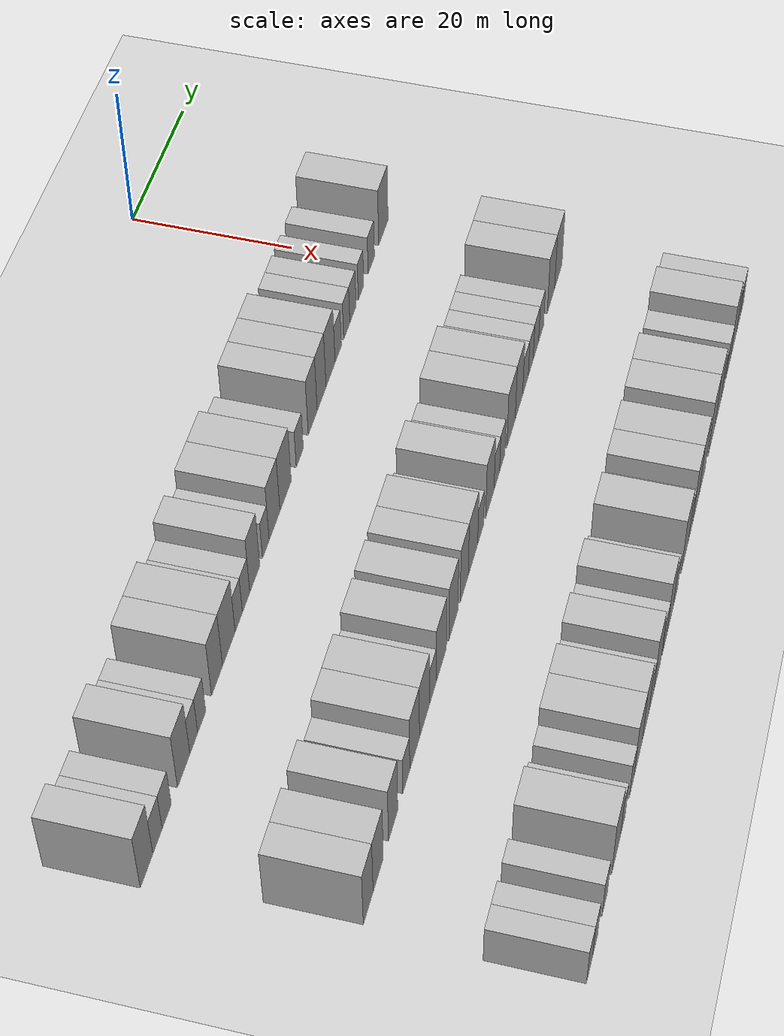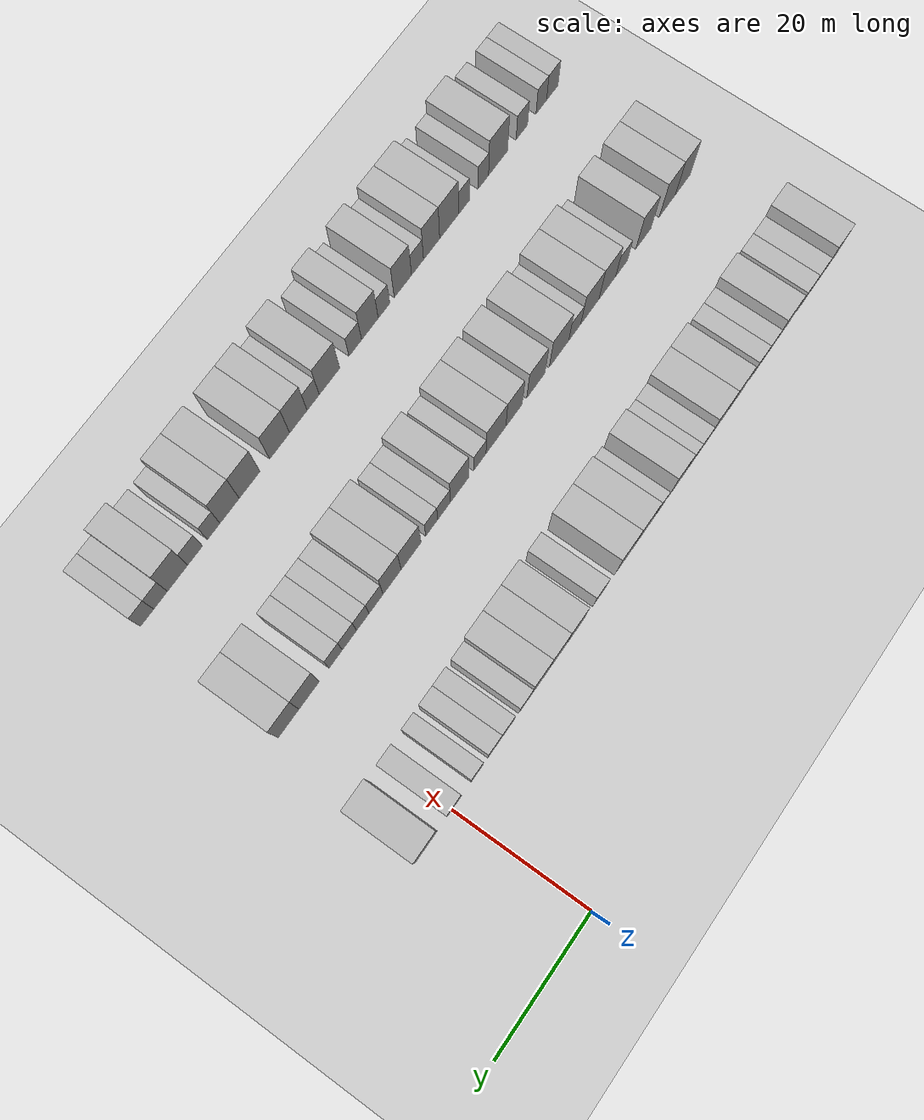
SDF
<sdf version="1.6">
 <world name="default">
  <include><name>ground_plane_1</name><uri>model://HANNAS_ground_plane</uri></include>
  <model name="building_67">
   <static>1</static>
   <pose>25.0000 -85.4441 0 0.000000 0.000000 0.000000</pose>
   <link name="link">
    <pose>0 0 4.50 0 0 0</pose>
    <collision name="collision"><geometry><box><size>10.0000 3.8924 9.0000</size></box></geometry></collision>
    <visual name="visual">
     <cast_shadows>0</cast_shadows>
     <geometry><box><size>10.0000 3.8924 9.0000</size></box></geometry>
     <material>
      <script>
       <uri>model://HANNAS_wall/materials/scripts</uri>
       <uri>model://HANNAS_wall/materials/textures</uri>
       <name>vrc/HANNAS_wall</name>
      </script>
     </material>
    </visual>
   </link>
  </model>
  <model name="building_68">
   <static>1</static>
   <pose>25.0000 -82.0385 0 0.000000 0.000000 0.000000</pose>
   <link name="link">
    <pose>0 0 3.00 0 0 0</pose>
    <collision name="collision"><geometry><box><size>10.0000 2.9190 6.0000</size></box></geometry></collision>
    <visual name="visual">
     <cast_shadows>0</cast_shadows>
     <geometry><box><size>10.0000 2.9190 6.0000</size></box></geometry>
     <material>
      <script>
       <uri>model://HANNAS_wall/materials/scripts</uri>
       <uri>model://HANNAS_wall/materials/textures</uri>
       <name>vrc/HANNAS_wall</name>
      </script>
     </material>
    </visual>
   </link>
  </model>
  <model name="building_69">
   <static>1</static>
   <pose>25.0000 -79.1159 0 0.000000 0.000000 0.000000</pose>
   <link name="link">
    <pose>0 0 3.00 0 0 0</pose>
    <collision name="collision"><geometry><box><size>10.0000 2.9261 6.0000</size></box></geometry></collision>
    <visual name="visual">
     <cast_shadows>0</cast_shadows>
     <geometry><box><size>10.0000 2.9261 6.0000</size></box></geometry>
     <material>
      <script>
       <uri>model://HANNAS_wall/materials/scripts</uri>
       <uri>model://HANNAS_wall/materials/textures</uri>
       <name>vrc/HANNAS_wall</name>
      </script>
     </material>
    </visual>
   </link>
  </model>
  <model name="building_70">
   <static>1</static>
   <pose>25.0000 -73.6167 0 0.000000 0.000000 0.000000</pose>
   <link name="link">
    <pose>0 0 4.50 0 0 0</pose>
    <collision name="collision"><geometry><box><size>10.0000 4.0724 9.0000</size></box></geometry></collision>
    <visual name="visual">
     <cast_shadows>0</cast_shadows>
     <geometry><box><size>10.0000 4.0724 9.0000</size></box></geometry>
     <material>
      <script>
       <uri>model://HANNAS_wall/materials/scripts</uri>
       <uri>model://HANNAS_wall/materials/textures</uri>
       <name>vrc/HANNAS_wall</name>
      </script>
     </material>
    </visual>
   </link>
  </model>
  <model name="building_71">
   <static>1</static>
   <pose>25.0000 -70.2737 0 0.000000 0.000000 0.000000</pose>
   <link name="link">
    <pose>0 0 3.00 0 0 0</pose>
    <collision name="collision"><geometry><box><size>10.0000 2.6136 6.0000</size></box></geometry></collision>
    <visual name="visual">
     <cast_shadows>0</cast_shadows>
     <geometry><box><size>10.0000 2.6136 6.0000</size></box></geometry>
     <material>
      <script>
       <uri>model://HANNAS_wall/materials/scripts</uri>
       <uri>model://HANNAS_wall/materials/textures</uri>
       <name>vrc/HANNAS_wall</name>
      </script>
     </material>
    </visual>
   </link>
  </model>
  <model name="building_72">
   <static>1</static>
   <pose>25.0000 -67.6079 0 0.000000 0.000000 0.000000</pose>
   <link name="link">
    <pose>0 0 3.00 0 0 0</pose>
    <collision name="collision"><geometry><box><size>10.0000 2.7178 6.0000</size></box></geometry></collision>
    <visual name="visual">
     <cast_shadows>0</cast_shadows>
     <geometry><box><size>10.0000 2.7178 6.0000</size></box></geometry>
     <material>
      <script>
       <uri>model://HANNAS_wall/materials/scripts</uri>
       <uri>model://HANNAS_wall/materials/textures</uri>
       <name>vrc/HANNAS_wall</name>
      </script>
     </material>
    </visual>
   </link>
  </model>
  <model name="building_73">
   <static>1</static>
   <pose>25.0000 -62.3417 0 0.000000 0.000000 0.000000</pose>
   <link name="link">
    <pose>0 0 4.50 0 0 0</pose>
    <collision name="collision"><geometry><box><size>10.0000 3.8146 9.0000</size></box></geometry></collision>
    <visual name="visual">
     <cast_shadows>0</cast_shadows>
     <geometry><box><size>10.0000 3.8146 9.0000</size></box></geometry>
     <material>
      <script>
       <uri>model://HANNAS_wall/materials/scripts</uri>
       <uri>model://HANNAS_wall/materials/textures</uri>
       <name>vrc/HANNAS_wall</name>
      </script>
     </material>
    </visual>
   </link>
  </model>
  <model name="building_74">
   <static>1</static>
   <pose>25.0000 -58.2011 0 0.000000 0.000000 0.000000</pose>
   <link name="link">
    <pose>0 0 4.50 0 0 0</pose>
    <collision name="collision"><geometry><box><size>10.0000 4.4665 9.0000</size></box></geometry></collision>
    <visual name="visual">
     <cast_shadows>0</cast_shadows>
     <geometry><box><size>10.0000 4.4665 9.0000</size></box></geometry>
     <material>
      <script>
       <uri>model://HANNAS_wall/materials/scripts</uri>
       <uri>model://HANNAS_wall/materials/textures</uri>
       <name>vrc/HANNAS_wall</name>
      </script>
     </material>
    </visual>
   </link>
  </model>
  <model name="building_75">
   <static>1</static>
   <pose>25.0000 -54.6587 0 0.000000 0.000000 0.000000</pose>
   <link name="link">
    <pose>0 0 3.00 0 0 0</pose>
    <collision name="collision"><geometry><box><size>10.0000 2.6183 6.0000</size></box></geometry></collision>
    <visual name="visual">
     <cast_shadows>0</cast_shadows>
     <geometry><box><size>10.0000 2.6183 6.0000</size></box></geometry>
     <material>
      <script>
       <uri>model://HANNAS_wall/materials/scripts</uri>
       <uri>model://HANNAS_wall/materials/textures</uri>
       <name>vrc/HANNAS_wall</name>
      </script>
     </material>
    </visual>
   </link>
  </model>
  <model name="building_76">
   <static>1</static>
   <pose>25.0000 -51.9928 0 0.000000 0.000000 0.000000</pose>
   <link name="link">
    <pose>0 0 3.00 0 0 0</pose>
    <collision name="collision"><geometry><box><size>10.0000 2.7135 6.0000</size></box></geometry></collision>
    <visual name="visual">
     <cast_shadows>0</cast_shadows>
     <geometry><box><size>10.0000 2.7135 6.0000</size></box></geometry>
     <material>
      <script>
       <uri>model://HANNAS_wall/materials/scripts</uri>
       <uri>model://HANNAS_wall/materials/textures</uri>
       <name>vrc/HANNAS_wall</name>
      </script>
     </material>
    </visual>
   </link>
  </model>
  <model name="building_77">
   <static>1</static>
   <pose>25.0000 -48.7814 0 0.000000 0.000000 0.000000</pose>
   <link name="link">
    <pose>0 0 4.50 0 0 0</pose>
    <collision name="collision"><geometry><box><size>10.0000 3.7094 9.0000</size></box></geometry></collision>
    <visual name="visual">
     <cast_shadows>0</cast_shadows>
     <geometry><box><size>10.0000 3.7094 9.0000</size></box></geometry>
     <material>
      <script>
       <uri>model://HANNAS_wall/materials/scripts</uri>
       <uri>model://HANNAS_wall/materials/textures</uri>
       <name>vrc/HANNAS_wall</name>
      </script>
     </material>
    </visual>
   </link>
  </model>
  <model name="building_78">
   <static>1</static>
   <pose>25.0000 -44.6507 0 0.000000 0.000000 0.000000</pose>
   <link name="link">
    <pose>0 0 3.00 0 0 0</pose>
    <collision name="collision"><geometry><box><size>10.0000 2.5519 6.0000</size></box></geometry></collision>
    <visual name="visual">
     <cast_shadows>0</cast_shadows>
     <geometry><box><size>10.0000 2.5519 6.0000</size></box></geometry>
     <material>
      <script>
       <uri>model://HANNAS_wall/materials/scripts</uri>
       <uri>model://HANNAS_wall/materials/textures</uri>
       <name>vrc/HANNAS_wall</name>
      </script>
     </material>
    </visual>
   </link>
  </model>
  <model name="building_79">
   <static>1</static>
   <pose>25.0000 -41.3000 0 0.000000 0.000000 0.000000</pose>
   <link name="link">
    <pose>0 0 4.50 0 0 0</pose>
    <collision name="collision"><geometry><box><size>10.0000 4.1495 9.0000</size></box></geometry></collision>
    <visual name="visual">
     <cast_shadows>0</cast_shadows>
     <geometry><box><size>10.0000 4.1495 9.0000</size></box></geometry>
     <material>
      <script>
       <uri>model://HANNAS_wall/materials/scripts</uri>
       <uri>model://HANNAS_wall/materials/textures</uri>
       <name>vrc/HANNAS_wall</name>
      </script>
     </material>
    </visual>
   </link>
  </model>
  <model name="building_80">
   <static>1</static>
   <pose>25.0000 -37.0117 0 0.000000 0.000000 0.000000</pose>
   <link name="link">
    <pose>0 0 4.50 0 0 0</pose>
    <collision name="collision"><geometry><box><size>10.0000 4.4269 9.0000</size></box></geometry></collision>
    <visual name="visual">
     <cast_shadows>0</cast_shadows>
     <geometry><box><size>10.0000 4.4269 9.0000</size></box></geometry>
     <material>
      <script>
       <uri>model://HANNAS_wall/materials/scripts</uri>
       <uri>model://HANNAS_wall/materials/textures</uri>
       <name>vrc/HANNAS_wall</name>
      </script>
     </material>
    </visual>
   </link>
  </model>
  <model name="building_81">
   <static>1</static>
   <pose>25.0000 -31.3711 0 0.000000 0.000000 0.000000</pose>
   <link name="link">
    <pose>0 0 3.00 0 0 0</pose>
    <collision name="collision"><geometry><box><size>10.0000 2.8544 6.0000</size></box></geometry></collision>
    <visual name="visual">
     <cast_shadows>0</cast_shadows>
     <geometry><box><size>10.0000 2.8544 6.0000</size></box></geometry>
     <material>
      <script>
       <uri>model://HANNAS_wall/materials/scripts</uri>
       <uri>model://HANNAS_wall/materials/textures</uri>
       <name>vrc/HANNAS_wall</name>
      </script>
     </material>
    </visual>
   </link>
  </model>
  <model name="building_82">
   <static>1</static>
   <pose>25.0000 -26.0920 0 0.000000 0.000000 0.000000</pose>
   <link name="link">
    <pose>0 0 4.50 0 0 0</pose>
    <collision name="collision"><geometry><box><size>10.0000 3.7039 9.0000</size></box></geometry></collision>
    <visual name="visual">
     <cast_shadows>0</cast_shadows>
     <geometry><box><size>10.0000 3.7039 9.0000</size></box></geometry>
     <material>
      <script>
       <uri>model://HANNAS_wall/materials/scripts</uri>
       <uri>model://HANNAS_wall/materials/textures</uri>
       <name>vrc/HANNAS_wall</name>
      </script>
     </material>
    </visual>
   </link>
  </model>
  <model name="building_83">
   <static>1</static>
   <pose>25.0000 -22.3873 0 0.000000 0.000000 0.000000</pose>
   <link name="link">
    <pose>0 0 4.50 0 0 0</pose>
    <collision name="collision"><geometry><box><size>10.0000 3.7054 9.0000</size></box></geometry></collision>
    <visual name="visual">
     <cast_shadows>0</cast_shadows>
     <geometry><box><size>10.0000 3.7054 9.0000</size></box></geometry>
     <material>
      <script>
       <uri>model://HANNAS_wall/materials/scripts</uri>
       <uri>model://HANNAS_wall/materials/textures</uri>
       <name>vrc/HANNAS_wall</name>
      </script>
     </material>
    </visual>
   </link>
  </model>
  <model name="building_84">
   <static>1</static>
   <pose>25.0000 -18.6073 0 0.000000 0.000000 0.000000</pose>
   <link name="link">
    <pose>0 0 4.50 0 0 0</pose>
    <collision name="collision"><geometry><box><size>10.0000 3.8545 9.0000</size></box></geometry></collision>
    <visual name="visual">
     <cast_shadows>0</cast_shadows>
     <geometry><box><size>10.0000 3.8545 9.0000</size></box></geometry>
     <material>
      <script>
       <uri>model://HANNAS_wall/materials/scripts</uri>
       <uri>model://HANNAS_wall/materials/textures</uri>
       <name>vrc/HANNAS_wall</name>
      </script>
     </material>
    </visual>
   </link>
  </model>
  <model name="building_85">
   <static>1</static>
   <pose>25.0000 -15.3106 0 0.000000 0.000000 0.000000</pose>
   <link name="link">
    <pose>0 0 3.00 0 0 0</pose>
    <collision name="collision"><geometry><box><size>10.0000 2.7390 6.0000</size></box></geometry></collision>
    <visual name="visual">
     <cast_shadows>0</cast_shadows>
     <geometry><box><size>10.0000 2.7390 6.0000</size></box></geometry>
     <material>
      <script>
       <uri>model://HANNAS_wall/materials/scripts</uri>
       <uri>model://HANNAS_wall/materials/textures</uri>
       <name>vrc/HANNAS_wall</name>
      </script>
     </material>
    </visual>
   </link>
  </model>
  <model name="building_86">
   <static>1</static>
   <pose>25.0000 -11.5894 0 0.000000 0.000000 0.000000</pose>
   <link name="link">
    <pose>0 0 3.00 0 0 0</pose>
    <collision name="collision"><geometry><box><size>10.0000 2.7033 6.0000</size></box></geometry></collision>
    <visual name="visual">
     <cast_shadows>0</cast_shadows>
     <geometry><box><size>10.0000 2.7033 6.0000</size></box></geometry>
     <material>
      <script>
       <uri>model://HANNAS_wall/materials/scripts</uri>
       <uri>model://HANNAS_wall/materials/textures</uri>
       <name>vrc/HANNAS_wall</name>
      </script>
     </material>
    </visual>
   </link>
  </model>
  <model name="building_87">
   <static>1</static>
   <pose>25.0000 -8.8435 0 0.000000 0.000000 0.000000</pose>
   <link name="link">
    <pose>0 0 3.00 0 0 0</pose>
    <collision name="collision"><geometry><box><size>10.0000 2.7885 6.0000</size></box></geometry></collision>
    <visual name="visual">
     <cast_shadows>0</cast_shadows>
     <geometry><box><size>10.0000 2.7885 6.0000</size></box></geometry>
     <material>
      <script>
       <uri>model://HANNAS_wall/materials/scripts</uri>
       <uri>model://HANNAS_wall/materials/textures</uri>
       <name>vrc/HANNAS_wall</name>
      </script>
     </material>
    </visual>
   </link>
  </model>
  <model name="building_88">
   <static>1</static>
   <pose>25.0000 -5.2146 0 0.000000 0.000000 0.000000</pose>
   <link name="link">
    <pose>0 0 3.00 0 0 0</pose>
    <collision name="collision"><geometry><box><size>10.0000 2.4694 6.0000</size></box></geometry></collision>
    <visual name="visual">
     <cast_shadows>0</cast_shadows>
     <geometry><box><size>10.0000 2.4694 6.0000</size></box></geometry>
     <material>
      <script>
       <uri>model://HANNAS_wall/materials/scripts</uri>
       <uri>model://HANNAS_wall/materials/textures</uri>
       <name>vrc/HANNAS_wall</name>
      </script>
     </material>
    </visual>
   </link>
  </model>
  <model name="building_89">
   <static>1</static>
   <pose>25.0000 -0.5125 0 0.000000 0.000000 0.000000</pose>
   <link name="link">
    <pose>0 0 3.00 0 0 0</pose>
    <collision name="collision"><geometry><box><size>10.0000 2.9347 6.0000</size></box></geometry></collision>
    <visual name="visual">
     <cast_shadows>0</cast_shadows>
     <geometry><box><size>10.0000 2.9347 6.0000</size></box></geometry>
     <material>
      <script>
       <uri>model://HANNAS_wall/materials/scripts</uri>
       <uri>model://HANNAS_wall/materials/textures</uri>
       <name>vrc/HANNAS_wall</name>
      </script>
     </material>
    </visual>
   </link>
  </model>
  <model name="building_90">
   <static>1</static>
   <pose>25.0000 5.1583 0 0.000000 0.000000 0.000000</pose>
   <link name="link">
    <pose>0 0 4.50 0 0 0</pose>
    <collision name="collision"><geometry><box><size>10.0000 4.4070 9.0000</size></box></geometry></collision>
    <visual name="visual">
     <cast_shadows>0</cast_shadows>
     <geometry><box><size>10.0000 4.4070 9.0000</size></box></geometry>
     <material>
      <script>
       <uri>model://HANNAS_wall/materials/scripts</uri>
       <uri>model://HANNAS_wall/materials/textures</uri>
       <name>vrc/HANNAS_wall</name>
      </script>
     </material>
    </visual>
   </link>
  </model>
  <model name="building_256">
   <static>1</static>
   <pose>47.0000 -84.1602 0 0.000000 0.000000 0.000000</pose>
   <link name="link">
    <pose>0 0 4.50 0 0 0</pose>
    <collision name="collision"><geometry><box><size>10.0000 3.6642 9.0000</size></box></geometry></collision>
    <visual name="visual">
     <cast_shadows>0</cast_shadows>
     <geometry><box><size>10.0000 3.6642 9.0000</size></box></geometry>
     <material>
      <script>
       <uri>model://HANNAS_wall/materials/scripts</uri>
       <uri>model://HANNAS_wall/materials/textures</uri>
       <name>vrc/HANNAS_wall</name>
      </script>
     </material>
    </visual>
   </link>
  </model>
  <model name="building_257">
   <static>1</static>
   <pose>47.0000 -80.3990 0 0.000000 0.000000 0.000000</pose>
   <link name="link">
    <pose>0 0 4.50 0 0 0</pose>
    <collision name="collision"><geometry><box><size>10.0000 3.8583 9.0000</size></box></geometry></collision>
    <visual name="visual">
     <cast_shadows>0</cast_shadows>
     <geometry><box><size>10.0000 3.8583 9.0000</size></box></geometry>
     <material>
      <script>
       <uri>model://HANNAS_wall/materials/scripts</uri>
       <uri>model://HANNAS_wall/materials/textures</uri>
       <name>vrc/HANNAS_wall</name>
      </script>
     </material>
    </visual>
   </link>
  </model>
  <model name="building_258">
   <static>1</static>
   <pose>47.0000 -74.6561 0 0.000000 0.000000 0.000000</pose>
   <link name="link">
    <pose>0 0 4.50 0 0 0</pose>
    <collision name="collision"><geometry><box><size>10.0000 3.6276 9.0000</size></box></geometry></collision>
    <visual name="visual">
     <cast_shadows>0</cast_shadows>
     <geometry><box><size>10.0000 3.6276 9.0000</size></box></geometry>
     <material>
      <script>
       <uri>model://HANNAS_wall/materials/scripts</uri>
       <uri>model://HANNAS_wall/materials/textures</uri>
       <name>vrc/HANNAS_wall</name>
      </script>
     </material>
    </visual>
   </link>
  </model>
  <model name="building_259">
   <static>1</static>
   <pose>47.0000 -69.4390 0 0.000000 0.000000 0.000000</pose>
   <link name="link">
    <pose>0 0 3.00 0 0 0</pose>
    <collision name="collision"><geometry><box><size>10.0000 2.8066 6.0000</size></box></geometry></collision>
    <visual name="visual">
     <cast_shadows>0</cast_shadows>
     <geometry><box><size>10.0000 2.8066 6.0000</size></box></geometry>
     <material>
      <script>
       <uri>model://HANNAS_wall/materials/scripts</uri>
       <uri>model://HANNAS_wall/materials/textures</uri>
       <name>vrc/HANNAS_wall</name>
      </script>
     </material>
    </visual>
   </link>
  </model>
  <model name="building_260">
   <static>1</static>
   <pose>47.0000 -66.0527 0 0.000000 0.000000 0.000000</pose>
   <link name="link">
    <pose>0 0 4.50 0 0 0</pose>
    <collision name="collision"><geometry><box><size>10.0000 3.9659 9.0000</size></box></geometry></collision>
    <visual name="visual">
     <cast_shadows>0</cast_shadows>
     <geometry><box><size>10.0000 3.9659 9.0000</size></box></geometry>
     <material>
      <script>
       <uri>model://HANNAS_wall/materials/scripts</uri>
       <uri>model://HANNAS_wall/materials/textures</uri>
       <name>vrc/HANNAS_wall</name>
      </script>
     </material>
    </visual>
   </link>
  </model>
  <model name="building_261">
   <static>1</static>
   <pose>47.0000 -61.9596 0 0.000000 0.000000 0.000000</pose>
   <link name="link">
    <pose>0 0 4.50 0 0 0</pose>
    <collision name="collision"><geometry><box><size>10.0000 4.2204 9.0000</size></box></geometry></collision>
    <visual name="visual">
     <cast_shadows>0</cast_shadows>
     <geometry><box><size>10.0000 4.2204 9.0000</size></box></geometry>
     <material>
      <script>
       <uri>model://HANNAS_wall/materials/scripts</uri>
       <uri>model://HANNAS_wall/materials/textures</uri>
       <name>vrc/HANNAS_wall</name>
      </script>
     </material>
    </visual>
   </link>
  </model>
  <model name="building_262">
   <static>1</static>
   <pose>47.0000 -58.4572 0 0.000000 0.000000 0.000000</pose>
   <link name="link">
    <pose>0 0 3.00 0 0 0</pose>
    <collision name="collision"><geometry><box><size>10.0000 2.7843 6.0000</size></box></geometry></collision>
    <visual name="visual">
     <cast_shadows>0</cast_shadows>
     <geometry><box><size>10.0000 2.7843 6.0000</size></box></geometry>
     <material>
      <script>
       <uri>model://HANNAS_wall/materials/scripts</uri>
       <uri>model://HANNAS_wall/materials/textures</uri>
       <name>vrc/HANNAS_wall</name>
      </script>
     </material>
    </visual>
   </link>
  </model>
  <model name="building_263">
   <static>1</static>
   <pose>47.0000 -54.8286 0 0.000000 0.000000 0.000000</pose>
   <link name="link">
    <pose>0 0 4.50 0 0 0</pose>
    <collision name="collision"><geometry><box><size>10.0000 4.4730 9.0000</size></box></geometry></collision>
    <visual name="visual">
     <cast_shadows>0</cast_shadows>
     <geometry><box><size>10.0000 4.4730 9.0000</size></box></geometry>
     <material>
      <script>
       <uri>model://HANNAS_wall/materials/scripts</uri>
       <uri>model://HANNAS_wall/materials/textures</uri>
       <name>vrc/HANNAS_wall</name>
      </script>
     </material>
    </visual>
   </link>
  </model>
  <model name="building_264">
   <static>1</static>
   <pose>47.0000 -49.5377 0 0.000000 0.000000 0.000000</pose>
   <link name="link">
    <pose>0 0 4.50 0 0 0</pose>
    <collision name="collision"><geometry><box><size>10.0000 4.1087 9.0000</size></box></geometry></collision>
    <visual name="visual">
     <cast_shadows>0</cast_shadows>
     <geometry><box><size>10.0000 4.1087 9.0000</size></box></geometry>
     <material>
      <script>
       <uri>model://HANNAS_wall/materials/scripts</uri>
       <uri>model://HANNAS_wall/materials/textures</uri>
       <name>vrc/HANNAS_wall</name>
      </script>
     </material>
    </visual>
   </link>
  </model>
  <model name="building_265">
   <static>1</static>
   <pose>47.0000 -44.6513 0 0.000000 0.000000 0.000000</pose>
   <link name="link">
    <pose>0 0 4.50 0 0 0</pose>
    <collision name="collision"><geometry><box><size>10.0000 3.6641 9.0000</size></box></geometry></collision>
    <visual name="visual">
     <cast_shadows>0</cast_shadows>
     <geometry><box><size>10.0000 3.6641 9.0000</size></box></geometry>
     <material>
      <script>
       <uri>model://HANNAS_wall/materials/scripts</uri>
       <uri>model://HANNAS_wall/materials/textures</uri>
       <name>vrc/HANNAS_wall</name>
      </script>
     </material>
    </visual>
   </link>
  </model>
  <model name="building_266">
   <static>1</static>
   <pose>47.0000 -40.6198 0 0.000000 0.000000 0.000000</pose>
   <link name="link">
    <pose>0 0 4.50 0 0 0</pose>
    <collision name="collision"><geometry><box><size>10.0000 4.3990 9.0000</size></box></geometry></collision>
    <visual name="visual">
     <cast_shadows>0</cast_shadows>
     <geometry><box><size>10.0000 4.3990 9.0000</size></box></geometry>
     <material>
      <script>
       <uri>model://HANNAS_wall/materials/scripts</uri>
       <uri>model://HANNAS_wall/materials/textures</uri>
       <name>vrc/HANNAS_wall</name>
      </script>
     </material>
    </visual>
   </link>
  </model>
  <model name="building_267">
   <static>1</static>
   <pose>47.0000 -37.0501 0 0.000000 0.000000 0.000000</pose>
   <link name="link">
    <pose>0 0 3.00 0 0 0</pose>
    <collision name="collision"><geometry><box><size>10.0000 2.7404 6.0000</size></box></geometry></collision>
    <visual name="visual">
     <cast_shadows>0</cast_shadows>
     <geometry><box><size>10.0000 2.7404 6.0000</size></box></geometry>
     <material>
      <script>
       <uri>model://HANNAS_wall/materials/scripts</uri>
       <uri>model://HANNAS_wall/materials/textures</uri>
       <name>vrc/HANNAS_wall</name>
      </script>
     </material>
    </visual>
   </link>
  </model>
  <model name="building_268">
   <static>1</static>
   <pose>47.0000 -32.6610 0 0.000000 0.000000 0.000000</pose>
   <link name="link">
    <pose>0 0 4.50 0 0 0</pose>
    <collision name="collision"><geometry><box><size>10.0000 4.0379 9.0000</size></box></geometry></collision>
    <visual name="visual">
     <cast_shadows>0</cast_shadows>
     <geometry><box><size>10.0000 4.0379 9.0000</size></box></geometry>
     <material>
      <script>
       <uri>model://HANNAS_wall/materials/scripts</uri>
       <uri>model://HANNAS_wall/materials/textures</uri>
       <name>vrc/HANNAS_wall</name>
      </script>
     </material>
    </visual>
   </link>
  </model>
  <model name="building_269">
   <static>1</static>
   <pose>47.0000 -29.2782 0 0.000000 0.000000 0.000000</pose>
   <link name="link">
    <pose>0 0 3.00 0 0 0</pose>
    <collision name="collision"><geometry><box><size>10.0000 2.7278 6.0000</size></box></geometry></collision>
    <visual name="visual">
     <cast_shadows>0</cast_shadows>
     <geometry><box><size>10.0000 2.7278 6.0000</size></box></geometry>
     <material>
      <script>
       <uri>model://HANNAS_wall/materials/scripts</uri>
       <uri>model://HANNAS_wall/materials/textures</uri>
       <name>vrc/HANNAS_wall</name>
      </script>
     </material>
    </visual>
   </link>
  </model>
  <model name="building_270">
   <static>1</static>
   <pose>47.0000 -26.6203 0 0.000000 0.000000 0.000000</pose>
   <link name="link">
    <pose>0 0 3.00 0 0 0</pose>
    <collision name="collision"><geometry><box><size>10.0000 2.5879 6.0000</size></box></geometry></collision>
    <visual name="visual">
     <cast_shadows>0</cast_shadows>
     <geometry><box><size>10.0000 2.5879 6.0000</size></box></geometry>
     <material>
      <script>
       <uri>model://HANNAS_wall/materials/scripts</uri>
       <uri>model://HANNAS_wall/materials/textures</uri>
       <name>vrc/HANNAS_wall</name>
      </script>
     </material>
    </visual>
   </link>
  </model>
  <model name="building_271">
   <static>1</static>
   <pose>47.0000 -22.2176 0 0.000000 0.000000 0.000000</pose>
   <link name="link">
    <pose>0 0 4.50 0 0 0</pose>
    <collision name="collision"><geometry><box><size>10.0000 4.2176 9.0000</size></box></geometry></collision>
    <visual name="visual">
     <cast_shadows>0</cast_shadows>
     <geometry><box><size>10.0000 4.2176 9.0000</size></box></geometry>
     <material>
      <script>
       <uri>model://HANNAS_wall/materials/scripts</uri>
       <uri>model://HANNAS_wall/materials/textures</uri>
       <name>vrc/HANNAS_wall</name>
      </script>
     </material>
    </visual>
   </link>
  </model>
  <model name="building_272">
   <static>1</static>
   <pose>47.0000 -18.2059 0 0.000000 0.000000 0.000000</pose>
   <link name="link">
    <pose>0 0 4.50 0 0 0</pose>
    <collision name="collision"><geometry><box><size>10.0000 3.8058 9.0000</size></box></geometry></collision>
    <visual name="visual">
     <cast_shadows>0</cast_shadows>
     <geometry><box><size>10.0000 3.8058 9.0000</size></box></geometry>
     <material>
      <script>
       <uri>model://HANNAS_wall/materials/scripts</uri>
       <uri>model://HANNAS_wall/materials/textures</uri>
       <name>vrc/HANNAS_wall</name>
      </script>
     </material>
    </visual>
   </link>
  </model>
  <model name="building_273">
   <static>1</static>
   <pose>47.0000 -14.8218 0 0.000000 0.000000 0.000000</pose>
   <link name="link">
    <pose>0 0 3.00 0 0 0</pose>
    <collision name="collision"><geometry><box><size>10.0000 2.9624 6.0000</size></box></geometry></collision>
    <visual name="visual">
     <cast_shadows>0</cast_shadows>
     <geometry><box><size>10.0000 2.9624 6.0000</size></box></geometry>
     <material>
      <script>
       <uri>model://HANNAS_wall/materials/scripts</uri>
       <uri>model://HANNAS_wall/materials/textures</uri>
       <name>vrc/HANNAS_wall</name>
      </script>
     </material>
    </visual>
   </link>
  </model>
  <model name="building_274">
   <static>1</static>
   <pose>47.0000 -12.0505 0 0.000000 0.000000 0.000000</pose>
   <link name="link">
    <pose>0 0 3.00 0 0 0</pose>
    <collision name="collision"><geometry><box><size>10.0000 2.5802 6.0000</size></box></geometry></collision>
    <visual name="visual">
     <cast_shadows>0</cast_shadows>
     <geometry><box><size>10.0000 2.5802 6.0000</size></box></geometry>
     <material>
      <script>
       <uri>model://HANNAS_wall/materials/scripts</uri>
       <uri>model://HANNAS_wall/materials/textures</uri>
       <name>vrc/HANNAS_wall</name>
      </script>
     </material>
    </visual>
   </link>
  </model>
  <model name="building_275">
   <static>1</static>
   <pose>47.0000 -9.3003 0 0.000000 0.000000 0.000000</pose>
   <link name="link">
    <pose>0 0 3.00 0 0 0</pose>
    <collision name="collision"><geometry><box><size>10.0000 2.9200 6.0000</size></box></geometry></collision>
    <visual name="visual">
     <cast_shadows>0</cast_shadows>
     <geometry><box><size>10.0000 2.9200 6.0000</size></box></geometry>
     <material>
      <script>
       <uri>model://HANNAS_wall/materials/scripts</uri>
       <uri>model://HANNAS_wall/materials/textures</uri>
       <name>vrc/HANNAS_wall</name>
      </script>
     </material>
    </visual>
   </link>
  </model>
  <model name="building_276">
   <static>1</static>
   <pose>47.0000 -6.4808 0 0.000000 0.000000 0.000000</pose>
   <link name="link">
    <pose>0 0 3.00 0 0 0</pose>
    <collision name="collision"><geometry><box><size>10.0000 2.7191 6.0000</size></box></geometry></collision>
    <visual name="visual">
     <cast_shadows>0</cast_shadows>
     <geometry><box><size>10.0000 2.7191 6.0000</size></box></geometry>
     <material>
      <script>
       <uri>model://HANNAS_wall/materials/scripts</uri>
       <uri>model://HANNAS_wall/materials/textures</uri>
       <name>vrc/HANNAS_wall</name>
      </script>
     </material>
    </visual>
   </link>
  </model>
  <model name="building_277">
   <static>1</static>
   <pose>47.0000 -1.0818 0 0.000000 0.000000 0.000000</pose>
   <link name="link">
    <pose>0 0 4.50 0 0 0</pose>
    <collision name="collision"><geometry><box><size>10.0000 4.0788 9.0000</size></box></geometry></collision>
    <visual name="visual">
     <cast_shadows>0</cast_shadows>
     <geometry><box><size>10.0000 4.0788 9.0000</size></box></geometry>
     <material>
      <script>
       <uri>model://HANNAS_wall/materials/scripts</uri>
       <uri>model://HANNAS_wall/materials/textures</uri>
       <name>vrc/HANNAS_wall</name>
      </script>
     </material>
    </visual>
   </link>
  </model>
  <model name="building_278">
   <static>1</static>
   <pose>47.0000 3.0430 0 0.000000 0.000000 0.000000</pose>
   <link name="link">
    <pose>0 0 4.50 0 0 0</pose>
    <collision name="collision"><geometry><box><size>10.0000 4.1708 9.0000</size></box></geometry></collision>
    <visual name="visual">
     <cast_shadows>0</cast_shadows>
     <geometry><box><size>10.0000 4.1708 9.0000</size></box></geometry>
     <material>
      <script>
       <uri>model://HANNAS_wall/materials/scripts</uri>
       <uri>model://HANNAS_wall/materials/textures</uri>
       <name>vrc/HANNAS_wall</name>
      </script>
     </material>
    </visual>
   </link>
  </model>
  <model name="building_445">
   <static>1</static>
   <pose>69.0000 -85.5089 0 0.000000 0.000000 0.000000</pose>
   <link name="link">
    <pose>0 0 3.00 0 0 0</pose>
    <collision name="collision"><geometry><box><size>10.0000 2.7718 6.0000</size></box></geometry></collision>
    <visual name="visual">
     <cast_shadows>0</cast_shadows>
     <geometry><box><size>10.0000 2.7718 6.0000</size></box></geometry>
     <material>
      <script>
       <uri>model://HANNAS_wall/materials/scripts</uri>
       <uri>model://HANNAS_wall/materials/textures</uri>
       <name>vrc/HANNAS_wall</name>
      </script>
     </material>
    </visual>
   </link>
  </model>
  <model name="building_446">
   <static>1</static>
   <pose>69.0000 -82.8585 0 0.000000 0.000000 0.000000</pose>
   <link name="link">
    <pose>0 0 3.00 0 0 0</pose>
    <collision name="collision"><geometry><box><size>10.0000 2.5290 6.0000</size></box></geometry></collision>
    <visual name="visual">
     <cast_shadows>0</cast_shadows>
     <geometry><box><size>10.0000 2.5290 6.0000</size></box></geometry>
     <material>
      <script>
       <uri>model://HANNAS_wall/materials/scripts</uri>
       <uri>model://HANNAS_wall/materials/textures</uri>
       <name>vrc/HANNAS_wall</name>
      </script>
     </material>
    </visual>
   </link>
  </model>
  <model name="building_447">
   <static>1</static>
   <pose>69.0000 -78.2317 0 0.000000 0.000000 0.000000</pose>
   <link name="link">
    <pose>0 0 3.00 0 0 0</pose>
    <collision name="collision"><geometry><box><size>10.0000 2.7247 6.0000</size></box></geometry></collision>
    <visual name="visual">
     <cast_shadows>0</cast_shadows>
     <geometry><box><size>10.0000 2.7247 6.0000</size></box></geometry>
     <material>
      <script>
       <uri>model://HANNAS_wall/materials/scripts</uri>
       <uri>model://HANNAS_wall/materials/textures</uri>
       <name>vrc/HANNAS_wall</name>
      </script>
     </material>
    </visual>
   </link>
  </model>
  <model name="building_448">
   <static>1</static>
   <pose>69.0000 -72.6355 0 0.000000 0.000000 0.000000</pose>
   <link name="link">
    <pose>0 0 4.50 0 0 0</pose>
    <collision name="collision"><geometry><box><size>10.0000 4.4677 9.0000</size></box></geometry></collision>
    <visual name="visual">
     <cast_shadows>0</cast_shadows>
     <geometry><box><size>10.0000 4.4677 9.0000</size></box></geometry>
     <material>
      <script>
       <uri>model://HANNAS_wall/materials/scripts</uri>
       <uri>model://HANNAS_wall/materials/textures</uri>
       <name>vrc/HANNAS_wall</name>
      </script>
     </material>
    </visual>
   </link>
  </model>
  <model name="building_449">
   <static>1</static>
   <pose>69.0000 -69.1795 0 0.000000 0.000000 0.000000</pose>
   <link name="link">
    <pose>0 0 3.00 0 0 0</pose>
    <collision name="collision"><geometry><box><size>10.0000 2.4441 6.0000</size></box></geometry></collision>
    <visual name="visual">
     <cast_shadows>0</cast_shadows>
     <geometry><box><size>10.0000 2.4441 6.0000</size></box></geometry>
     <material>
      <script>
       <uri>model://HANNAS_wall/materials/scripts</uri>
       <uri>model://HANNAS_wall/materials/textures</uri>
       <name>vrc/HANNAS_wall</name>
      </script>
     </material>
    </visual>
   </link>
  </model>
  <model name="building_450">
   <static>1</static>
   <pose>69.0000 -64.7218 0 0.000000 0.000000 0.000000</pose>
   <link name="link">
    <pose>0 0 3.00 0 0 0</pose>
    <collision name="collision"><geometry><box><size>10.0000 2.4714 6.0000</size></box></geometry></collision>
    <visual name="visual">
     <cast_shadows>0</cast_shadows>
     <geometry><box><size>10.0000 2.4714 6.0000</size></box></geometry>
     <material>
      <script>
       <uri>model://HANNAS_wall/materials/scripts</uri>
       <uri>model://HANNAS_wall/materials/textures</uri>
       <name>vrc/HANNAS_wall</name>
      </script>
     </material>
    </visual>
   </link>
  </model>
  <model name="building_451">
   <static>1</static>
   <pose>69.0000 -61.3144 0 0.000000 0.000000 0.000000</pose>
   <link name="link">
    <pose>0 0 4.50 0 0 0</pose>
    <collision name="collision"><geometry><box><size>10.0000 4.3435 9.0000</size></box></geometry></collision>
    <visual name="visual">
     <cast_shadows>0</cast_shadows>
     <geometry><box><size>10.0000 4.3435 9.0000</size></box></geometry>
     <material>
      <script>
       <uri>model://HANNAS_wall/materials/scripts</uri>
       <uri>model://HANNAS_wall/materials/textures</uri>
       <name>vrc/HANNAS_wall</name>
      </script>
     </material>
    </visual>
   </link>
  </model>
  <model name="building_452">
   <static>1</static>
   <pose>69.0000 -57.3161 0 0.000000 0.000000 0.000000</pose>
   <link name="link">
    <pose>0 0 4.50 0 0 0</pose>
    <collision name="collision"><geometry><box><size>10.0000 3.6530 9.0000</size></box></geometry></collision>
    <visual name="visual">
     <cast_shadows>0</cast_shadows>
     <geometry><box><size>10.0000 3.6530 9.0000</size></box></geometry>
     <material>
      <script>
       <uri>model://HANNAS_wall/materials/scripts</uri>
       <uri>model://HANNAS_wall/materials/textures</uri>
       <name>vrc/HANNAS_wall</name>
      </script>
     </material>
    </visual>
   </link>
  </model>
  <model name="building_453">
   <static>1</static>
   <pose>69.0000 -54.1416 0 0.000000 0.000000 0.000000</pose>
   <link name="link">
    <pose>0 0 3.00 0 0 0</pose>
    <collision name="collision"><geometry><box><size>10.0000 2.6960 6.0000</size></box></geometry></collision>
    <visual name="visual">
     <cast_shadows>0</cast_shadows>
     <geometry><box><size>10.0000 2.6960 6.0000</size></box></geometry>
     <material>
      <script>
       <uri>model://HANNAS_wall/materials/scripts</uri>
       <uri>model://HANNAS_wall/materials/textures</uri>
       <name>vrc/HANNAS_wall</name>
      </script>
     </material>
    </visual>
   </link>
  </model>
  <model name="building_454">
   <static>1</static>
   <pose>69.0000 -50.8653 0 0.000000 0.000000 0.000000</pose>
   <link name="link">
    <pose>0 0 4.50 0 0 0</pose>
    <collision name="collision"><geometry><box><size>10.0000 3.8565 9.0000</size></box></geometry></collision>
    <visual name="visual">
     <cast_shadows>0</cast_shadows>
     <geometry><box><size>10.0000 3.8565 9.0000</size></box></geometry>
     <material>
      <script>
       <uri>model://HANNAS_wall/materials/scripts</uri>
       <uri>model://HANNAS_wall/materials/textures</uri>
       <name>vrc/HANNAS_wall</name>
      </script>
     </material>
    </visual>
   </link>
  </model>
  <model name="building_455">
   <static>1</static>
   <pose>69.0000 -46.6644 0 0.000000 0.000000 0.000000</pose>
   <link name="link">
    <pose>0 0 3.00 0 0 0</pose>
    <collision name="collision"><geometry><box><size>10.0000 2.5453 6.0000</size></box></geometry></collision>
    <visual name="visual">
     <cast_shadows>0</cast_shadows>
     <geometry><box><size>10.0000 2.5453 6.0000</size></box></geometry>
     <material>
      <script>
       <uri>model://HANNAS_wall/materials/scripts</uri>
       <uri>model://HANNAS_wall/materials/textures</uri>
       <name>vrc/HANNAS_wall</name>
      </script>
     </material>
    </visual>
   </link>
  </model>
  <model name="building_456">
   <static>1</static>
   <pose>69.0000 -43.5657 0 0.000000 0.000000 0.000000</pose>
   <link name="link">
    <pose>0 0 4.50 0 0 0</pose>
    <collision name="collision"><geometry><box><size>10.0000 3.6522 9.0000</size></box></geometry></collision>
    <visual name="visual">
     <cast_shadows>0</cast_shadows>
     <geometry><box><size>10.0000 3.6522 9.0000</size></box></geometry>
     <material>
      <script>
       <uri>model://HANNAS_wall/materials/scripts</uri>
       <uri>model://HANNAS_wall/materials/textures</uri>
       <name>vrc/HANNAS_wall</name>
      </script>
     </material>
    </visual>
   </link>
  </model>
  <model name="building_457">
   <static>1</static>
   <pose>69.0000 -40.3593 0 0.000000 0.000000 0.000000</pose>
   <link name="link">
    <pose>0 0 3.00 0 0 0</pose>
    <collision name="collision"><geometry><box><size>10.0000 2.7605 6.0000</size></box></geometry></collision>
    <visual name="visual">
     <cast_shadows>0</cast_shadows>
     <geometry><box><size>10.0000 2.7605 6.0000</size></box></geometry>
     <material>
      <script>
       <uri>model://HANNAS_wall/materials/scripts</uri>
       <uri>model://HANNAS_wall/materials/textures</uri>
       <name>vrc/HANNAS_wall</name>
      </script>
     </material>
    </visual>
   </link>
  </model>
  <model name="building_458">
   <static>1</static>
   <pose>69.0000 -34.7695 0 0.000000 0.000000 0.000000</pose>
   <link name="link">
    <pose>0 0 4.50 0 0 0</pose>
    <collision name="collision"><geometry><box><size>10.0000 4.4190 9.0000</size></box></geometry></collision>
    <visual name="visual">
     <cast_shadows>0</cast_shadows>
     <geometry><box><size>10.0000 4.4190 9.0000</size></box></geometry>
     <material>
      <script>
       <uri>model://HANNAS_wall/materials/scripts</uri>
       <uri>model://HANNAS_wall/materials/textures</uri>
       <name>vrc/HANNAS_wall</name>
      </script>
     </material>
    </visual>
   </link>
  </model>
  <model name="building_459">
   <static>1</static>
   <pose>69.0000 -31.2698 0 0.000000 0.000000 0.000000</pose>
   <link name="link">
    <pose>0 0 3.00 0 0 0</pose>
    <collision name="collision"><geometry><box><size>10.0000 2.5804 6.0000</size></box></geometry></collision>
    <visual name="visual">
     <cast_shadows>0</cast_shadows>
     <geometry><box><size>10.0000 2.5804 6.0000</size></box></geometry>
     <material>
      <script>
       <uri>model://HANNAS_wall/materials/scripts</uri>
       <uri>model://HANNAS_wall/materials/textures</uri>
       <name>vrc/HANNAS_wall</name>
      </script>
     </material>
    </visual>
   </link>
  </model>
  <model name="building_460">
   <static>1</static>
   <pose>69.0000 -28.1351 0 0.000000 0.000000 0.000000</pose>
   <link name="link">
    <pose>0 0 4.50 0 0 0</pose>
    <collision name="collision"><geometry><box><size>10.0000 3.6890 9.0000</size></box></geometry></collision>
    <visual name="visual">
     <cast_shadows>0</cast_shadows>
     <geometry><box><size>10.0000 3.6890 9.0000</size></box></geometry>
     <material>
      <script>
       <uri>model://HANNAS_wall/materials/scripts</uri>
       <uri>model://HANNAS_wall/materials/textures</uri>
       <name>vrc/HANNAS_wall</name>
      </script>
     </material>
    </visual>
   </link>
  </model>
  <model name="building_461">
   <static>1</static>
   <pose>69.0000 -24.1804 0 0.000000 0.000000 0.000000</pose>
   <link name="link">
    <pose>0 0 4.50 0 0 0</pose>
    <collision name="collision"><geometry><box><size>10.0000 4.2204 9.0000</size></box></geometry></collision>
    <visual name="visual">
     <cast_shadows>0</cast_shadows>
     <geometry><box><size>10.0000 4.2204 9.0000</size></box></geometry>
     <material>
      <script>
       <uri>model://HANNAS_wall/materials/scripts</uri>
       <uri>model://HANNAS_wall/materials/textures</uri>
       <name>vrc/HANNAS_wall</name>
      </script>
     </material>
    </visual>
   </link>
  </model>
  <model name="building_462">
   <static>1</static>
   <pose>69.0000 -17.9207 0 0.000000 0.000000 0.000000</pose>
   <link name="link">
    <pose>0 0 4.50 0 0 0</pose>
    <collision name="collision"><geometry><box><size>10.0000 4.2988 9.0000</size></box></geometry></collision>
    <visual name="visual">
     <cast_shadows>0</cast_shadows>
     <geometry><box><size>10.0000 4.2988 9.0000</size></box></geometry>
     <material>
      <script>
       <uri>model://HANNAS_wall/materials/scripts</uri>
       <uri>model://HANNAS_wall/materials/textures</uri>
       <name>vrc/HANNAS_wall</name>
      </script>
     </material>
    </visual>
   </link>
  </model>
  <model name="building_463">
   <static>1</static>
   <pose>69.0000 -13.7966 0 0.000000 0.000000 0.000000</pose>
   <link name="link">
    <pose>0 0 4.50 0 0 0</pose>
    <collision name="collision"><geometry><box><size>10.0000 3.9495 9.0000</size></box></geometry></collision>
    <visual name="visual">
     <cast_shadows>0</cast_shadows>
     <geometry><box><size>10.0000 3.9495 9.0000</size></box></geometry>
     <material>
      <script>
       <uri>model://HANNAS_wall/materials/scripts</uri>
       <uri>model://HANNAS_wall/materials/textures</uri>
       <name>vrc/HANNAS_wall</name>
      </script>
     </material>
    </visual>
   </link>
  </model>
  <model name="building_464">
   <static>1</static>
   <pose>69.0000 -10.5491 0 0.000000 0.000000 0.000000</pose>
   <link name="link">
    <pose>0 0 3.00 0 0 0</pose>
    <collision name="collision"><geometry><box><size>10.0000 2.5455 6.0000</size></box></geometry></collision>
    <visual name="visual">
     <cast_shadows>0</cast_shadows>
     <geometry><box><size>10.0000 2.5455 6.0000</size></box></geometry>
     <material>
      <script>
       <uri>model://HANNAS_wall/materials/scripts</uri>
       <uri>model://HANNAS_wall/materials/textures</uri>
       <name>vrc/HANNAS_wall</name>
      </script>
     </material>
    </visual>
   </link>
  </model>
  <model name="building_465">
   <static>1</static>
   <pose>69.0000 -6.7854 0 0.000000 0.000000 0.000000</pose>
   <link name="link">
    <pose>0 0 3.00 0 0 0</pose>
    <collision name="collision"><geometry><box><size>10.0000 2.9819 6.0000</size></box></geometry></collision>
    <visual name="visual">
     <cast_shadows>0</cast_shadows>
     <geometry><box><size>10.0000 2.9819 6.0000</size></box></geometry>
     <material>
      <script>
       <uri>model://HANNAS_wall/materials/scripts</uri>
       <uri>model://HANNAS_wall/materials/textures</uri>
       <name>vrc/HANNAS_wall</name>
      </script>
     </material>
    </visual>
   </link>
  </model>
  <model name="building_466">
   <static>1</static>
   <pose>69.0000 -3.2631 0 0.000000 0.000000 0.000000</pose>
   <link name="link">
    <pose>0 0 4.50 0 0 0</pose>
    <collision name="collision"><geometry><box><size>10.0000 4.0626 9.0000</size></box></geometry></collision>
    <visual name="visual">
     <cast_shadows>0</cast_shadows>
     <geometry><box><size>10.0000 4.0626 9.0000</size></box></geometry>
     <material>
      <script>
       <uri>model://HANNAS_wall/materials/scripts</uri>
       <uri>model://HANNAS_wall/materials/textures</uri>
       <name>vrc/HANNAS_wall</name>
      </script>
     </material>
    </visual>
   </link>
  </model>
  <model name="building_467">
   <static>1</static>
   <pose>69.0000 0.1242 0 0.000000 0.000000 0.000000</pose>
   <link name="link">
    <pose>0 0 3.00 0 0 0</pose>
    <collision name="collision"><geometry><box><size>10.0000 2.7119 6.0000</size></box></geometry></collision>
    <visual name="visual">
     <cast_shadows>0</cast_shadows>
     <geometry><box><size>10.0000 2.7119 6.0000</size></box></geometry>
     <material>
      <script>
       <uri>model://HANNAS_wall/materials/scripts</uri>
       <uri>model://HANNAS_wall/materials/textures</uri>
       <name>vrc/HANNAS_wall</name>
      </script>
     </material>
    </visual>
   </link>
  </model>
  <model name="building_468">
   <static>1</static>
   <pose>69.0000 2.7946 0 0.000000 0.000000 0.000000</pose>
   <link name="link">
    <pose>0 0 3.00 0 0 0</pose>
    <collision name="collision"><geometry><box><size>10.0000 2.6289 6.0000</size></box></geometry></collision>
    <visual name="visual">
     <cast_shadows>0</cast_shadows>
     <geometry><box><size>10.0000 2.6289 6.0000</size></box></geometry>
     <material>
      <script>
       <uri>model://HANNAS_wall/materials/scripts</uri>
       <uri>model://HANNAS_wall/materials/textures</uri>
       <name>vrc/HANNAS_wall</name>
      </script>
     </material>
    </visual>
   </link>
  </model>
 </world>
</sdf>
